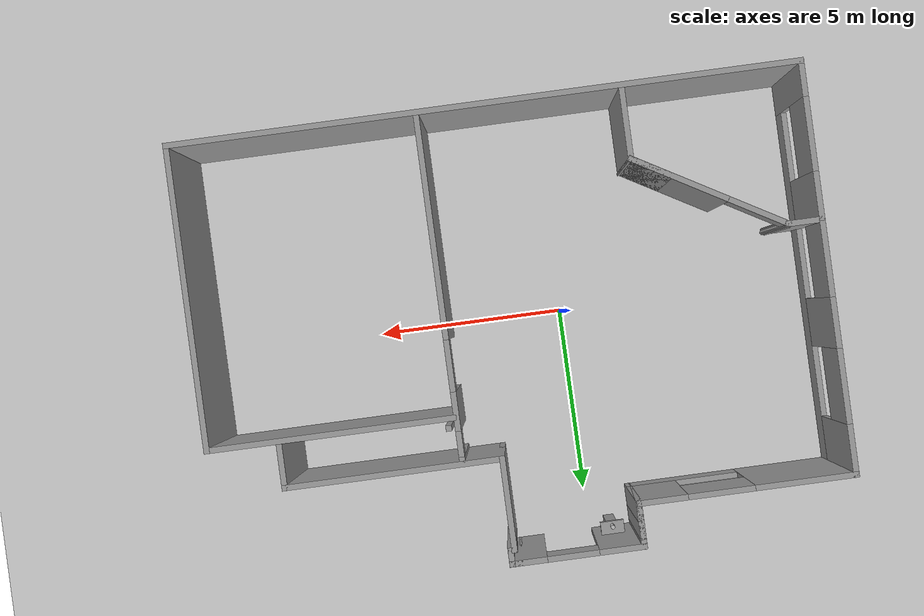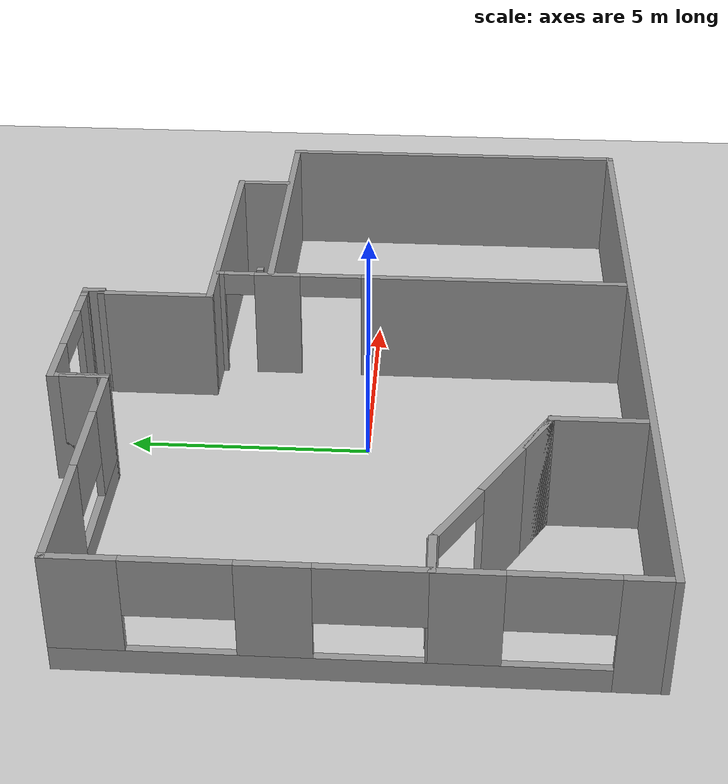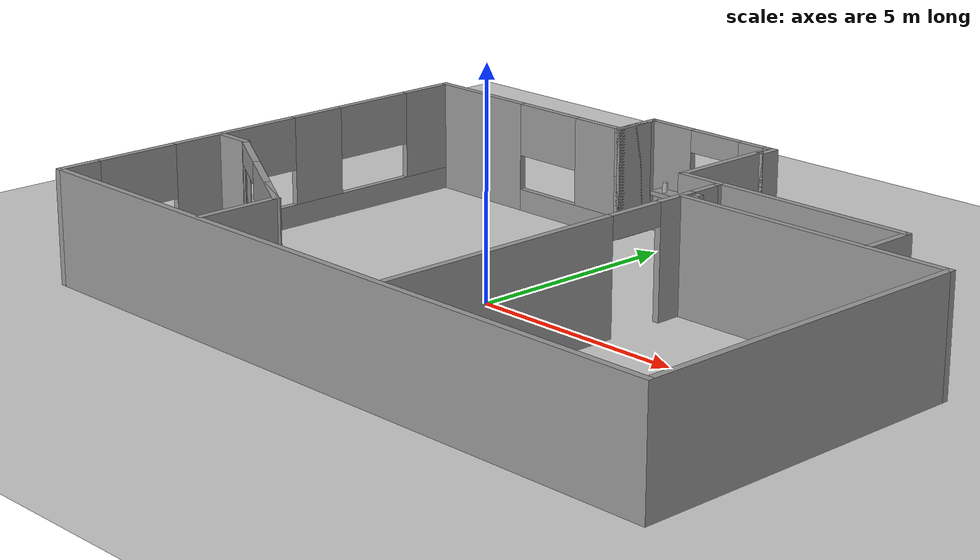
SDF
<sdf version="1.6">
 <world name="default">
  <light name="sun" type="directional">
   <pose>0 0 10 0 -0 0</pose>
   <diffuse>0.8 0.8 0.8 1</diffuse>
   <specular>0.1 0.1 0.1 1</specular>
   <attenuation>
    <range>1000</range>
    <constant>0.9</constant>
    <linear>0.01</linear>
    <quadratic>0.001</quadratic>
   </attenuation>
   <direction>-0.5 0.5 -1</direction>
  </light>
  <model name="ground_plane">
   <static>1</static>
   <link name="link">
    <collision name="collision">
     <geometry><plane><normal>0 0 1</normal><size>100 100</size></plane></geometry>
     <surface><friction><ode><mu>100</mu><mu2>50</mu2></ode></friction></surface>
    </collision>
    <visual name="visual">
     <cast_shadows>0</cast_shadows>
     <geometry><plane><normal>0 0 1</normal><size>100 100</size></plane></geometry>
     <material>
      <script><uri>file://media/materials/scripts/gazebo.material</uri><name>Gazebo/Grey</name></script>
     </material>
    </visual>
   </link>
  </model>
  <gravity>0 0 -9.8</gravity>
  <magnetic_field>6e-06 2.3e-05 -4.2e-05</magnetic_field>
  <atmosphere type="adiabatic"/>
  <physics name="default_physics" default="0" type="ode">
   <max_step_size>0.001</max_step_size>
   <real_time_factor>1</real_time_factor>
   <real_time_update_rate>1000</real_time_update_rate>
  </physics>
  <scene><ambient>0.4 0.4 0.4 1</ambient><background>0.7 0.7 0.7 1</background><shadows>1</shadows></scene>
  <spherical_coordinates>
   <surface_model>EARTH_WGS84</surface_model>
   <latitude_deg>0</latitude_deg>
   <longitude_deg>0</longitude_deg>
   <elevation>0</elevation>
   <heading_deg>0</heading_deg>
  </spherical_coordinates>
  <model name="vxlab">
   <pose>1.3462 0.357612 0 0 -0 0</pose>
   <link name="Wall_0">
    <pose>-5.375 4.775 0 0 -0 0</pose>
    <visual name="Wall_0_Visual_0">
     <pose>-1.54131 0 1.25 0 -0 0</pose>
     <geometry><box><size>2.66739 0.15 2.5</size></box></geometry>
     <material>
      <script><uri>file://media/materials/scripts/gazebo.material</uri><name>Gazebo/Grey</name></script>
      <ambient>1 1 1 1</ambient>
     </material>
    </visual>
    <collision name="Wall_0_Collision_0">
     <geometry><box><size>2.66739 0.15 2.5</size></box></geometry>
     <pose>-1.54131 0 1.25 0 -0 0</pose>
    </collision>
    <visual name="Wall_0_Visual_1">
     <pose>1.33369 0 0.25 0 -0 0</pose>
     <geometry><box><size>3.08261 0.15 0.5</size></box></geometry>
     <material>
      <script><uri>file://media/materials/scripts/gazebo.material</uri><name>Gazebo/Grey</name></script>
      <ambient>1 1 1 1</ambient>
     </material>
    </visual>
    <collision name="Wall_0_Collision_1">
     <geometry><box><size>3.08261 0.15 0.5</size></box></geometry>
     <pose>1.33369 0 0.25 0 -0 0</pose>
    </collision>
    <visual name="Wall_0_Visual_2">
     <pose>2.19944 0 1.5 0 -0 0</pose>
     <geometry><box><size>1.35111 0.15 2</size></box></geometry>
     <material>
      <script><uri>file://media/materials/scripts/gazebo.material</uri><name>Gazebo/Grey</name></script>
      <ambient>1 1 1 1</ambient>
     </material>
    </visual>
    <collision name="Wall_0_Collision_2">
     <geometry><box><size>1.35111 0.15 2</size></box></geometry>
     <pose>2.19944 0 1.5 0 -0 0</pose>
    </collision>
    <visual name="Wall_0_Visual_3">
     <pose>0.658136 0 1.9 0 -0 0</pose>
     <geometry><box><size>1.7315 0.15 1.2</size></box></geometry>
     <material>
      <script><uri>file://media/materials/scripts/gazebo.material</uri><name>Gazebo/Grey</name></script>
      <ambient>1 1 1 1</ambient>
     </material>
    </visual>
    <collision name="Wall_0_Collision_3">
     <geometry><box><size>1.7315 0.15 1.2</size></box></geometry>
     <pose>0.658136 0 1.9 0 -0 0</pose>
    </collision>
   </link>
   <link name="Wall_1">
    <collision name="Wall_1_Collision">
     <geometry><box><size>1 0.15 2.5</size></box></geometry>
     <pose>0 0 1.25 0 -0 0</pose>
    </collision>
    <visual name="Wall_1_Visual">
     <pose>0 0 1.25 0 -0 0</pose>
     <geometry><box><size>1 0.15 2.5</size></box></geometry>
     <material>
      <script><uri>file://media/materials/scripts/gazebo.material</uri><name>Gazebo/Grey</name></script>
      <ambient>1 1 1 1</ambient>
     </material>
    </visual>
    <pose>-2.575 5.2 0 0 -0 1.5708</pose>
   </link>
   <link name="Wall_2">
    <collision name="Wall_2_Collision">
     <geometry><box><size>1 0.15 2.5</size></box></geometry>
     <pose>0 0 1.25 0 -0 0</pose>
    </collision>
    <visual name="Wall_2_Visual">
     <pose>0 0 1.25 0 -0 0</pose>
     <geometry><box><size>1 0.15 2.5</size></box></geometry>
     <material>
      <script><uri>file://media/materials/scripts/gazebo.material</uri><name>Gazebo/Grey</name></script>
      <ambient>1 1 1 1</ambient>
     </material>
    </visual>
    <pose>-2.575 5.2 0 0 0 -1.5708</pose>
   </link>
   <link name="Wall_24">
    <collision name="Wall_24_Collision">
     <geometry><box><size>0.15 0.15 2.5</size></box></geometry>
     <pose>0 0 1.25 0 -0 0</pose>
    </collision>
    <visual name="Wall_24_Visual">
     <pose>0 0 1.25 0 -0 0</pose>
     <geometry><box><size>0.15 0.15 2.5</size></box></geometry>
     <material>
      <script><uri>file://media/materials/scripts/gazebo.material</uri><name>Gazebo/Grey</name></script>
      <ambient>1 1 1 1</ambient>
     </material>
    </visual>
    <pose>0.825 5.875 0 0 -0 0</pose>
   </link>
   <link name="Wall_29">
    <pose>-0.875 5.875 0 0 -0 0</pose>
    <visual name="Wall_29_Visual_0">
     <pose>-1.16054 0 1.25 0 -0 0</pose>
     <geometry><box><size>1.22892 0.15 2.5</size></box></geometry>
     <material>
      <script><uri>file://media/materials/scripts/gazebo.material</uri><name>Gazebo/Grey</name></script>
      <ambient>1 1 1 1</ambient>
     </material>
    </visual>
    <collision name="Wall_29_Collision_0">
     <geometry><box><size>1.22892 0.15 2.5</size></box></geometry>
     <pose>-1.16054 0 1.25 0 -0 0</pose>
    </collision>
    <visual name="Wall_29_Visual_1">
     <pose>1.28446 0 1.25 0 -0 0</pose>
     <geometry><box><size>0.98108 0.15 2.5</size></box></geometry>
     <material>
      <script><uri>file://media/materials/scripts/gazebo.material</uri><name>Gazebo/Grey</name></script>
      <ambient>1 1 1 1</ambient>
     </material>
    </visual>
    <collision name="Wall_29_Collision_1">
     <geometry><box><size>0.98108 0.15 2.5</size></box></geometry>
     <pose>1.28446 0 1.25 0 -0 0</pose>
    </collision>
    <visual name="Wall_29_Visual_2">
     <pose>0.12392 0 2.25 0 -0 0</pose>
     <geometry><box><size>1.34 0.15 0.5</size></box></geometry>
     <material>
      <script><uri>file://media/materials/scripts/gazebo.material</uri><name>Gazebo/Grey</name></script>
      <ambient>1 1 1 1</ambient>
     </material>
    </visual>
    <collision name="Wall_29_Collision_2">
     <geometry><box><size>1.34 0.15 0.5</size></box></geometry>
     <pose>0.12392 0 2.25 0 -0 0</pose>
    </collision>
   </link>
   <link name="Wall_3">
    <collision name="Wall_3_Collision">
     <geometry><box><size>1 0.15 2.5</size></box></geometry>
     <pose>0 0 1.25 0 -0 0</pose>
    </collision>
    <visual name="Wall_3_Visual">
     <pose>0 0 1.25 0 -0 0</pose>
     <geometry><box><size>1 0.15 2.5</size></box></geometry>
     <material>
      <script><uri>file://media/materials/scripts/gazebo.material</uri><name>Gazebo/Grey</name></script>
      <ambient>1 1 1 1</ambient>
     </material>
    </visual>
    <pose>-2.575 5.2 0 0 -0 1.5708</pose>
   </link>
   <link name="Wall_30">
    <collision name="Wall_30_Collision">
     <geometry><box><size>0.5 0.15 2.5</size></box></geometry>
     <pose>0 0 1.25 0 -0 0</pose>
    </collision>
    <visual name="Wall_30_Visual">
     <pose>0 0 1.25 0 -0 0</pose>
     <geometry><box><size>0.5 0.15 2.5</size></box></geometry>
     <material>
      <script><uri>file://media/materials/scripts/gazebo.material</uri><name>Gazebo/Grey</name></script>
      <ambient>1 1 1 1</ambient>
     </material>
    </visual>
    <pose>0.825 5.7 0 0 0 -1.5708</pose>
   </link>
   <link name="Wall_31">
    <collision name="Wall_31_Collision">
     <geometry><box><size>0.25 0.15 2.5</size></box></geometry>
     <pose>0 0 1.25 0 -0 0</pose>
    </collision>
    <visual name="Wall_31_Visual">
     <pose>0 0 1.25 0 -0 0</pose>
     <geometry><box><size>0.25 0.15 2.5</size></box></geometry>
     <material>
      <script><uri>file://media/materials/scripts/gazebo.material</uri><name>Gazebo/Grey</name></script>
      <ambient>1 1 1 1</ambient>
     </material>
    </visual>
    <pose>0.775 5.525 0 0 -0 3.14159</pose>
   </link>
   <link name="Wall_32">
    <collision name="Wall_32_Collision">
     <geometry><box><size>2.5 0.15 2.5</size></box></geometry>
     <pose>0 0 1.25 0 -0 0</pose>
    </collision>
    <visual name="Wall_32_Visual">
     <pose>0 0 1.25 0 -0 0</pose>
     <geometry><box><size>2.5 0.15 2.5</size></box></geometry>
     <material>
      <script><uri>file://media/materials/scripts/gazebo.material</uri><name>Gazebo/Grey</name></script>
      <ambient>1 1 1 1</ambient>
     </material>
    </visual>
    <pose>0.725 4.35 0 0 0 -1.5708</pose>
   </link>
   <link name="Wall_4">
    <collision name="Wall_4_Collision">
     <geometry><box><size>1 0.15 2.5</size></box></geometry>
     <pose>0 0 1.25 0 -0 0</pose>
    </collision>
    <visual name="Wall_4_Visual">
     <pose>0 0 1.25 0 -0 0</pose>
     <geometry><box><size>1 0.15 2.5</size></box></geometry>
     <material>
      <script><uri>file://media/materials/scripts/gazebo.material</uri><name>Gazebo/Grey</name></script>
      <ambient>1 1 1 1</ambient>
     </material>
    </visual>
    <pose>-2.575 5.2 0 0 0 -1.5708</pose>
   </link>
   <link name="Wall_41">
    <collision name="Wall_41_Collision">
     <geometry><box><size>16.5 0.15 2.5</size></box></geometry>
     <pose>0 0 1.25 0 -0 0</pose>
    </collision>
    <visual name="Wall_41_Visual">
     <pose>0 0 1.25 0 -0 0</pose>
     <geometry><box><size>16.5 0.15 2.5</size></box></geometry>
     <material>
      <script><uri>file://media/materials/scripts/gazebo.material</uri><name>Gazebo/Grey</name></script>
      <ambient>1 1 1 1</ambient>
     </material>
    </visual>
    <pose>0 -5.875 0 0 -0 3.14159</pose>
   </link>
   <link name="Wall_42">
    <pose>-8.175 -0.55 0 0 -0 1.5708</pose>
    <visual name="Wall_42_Visual_0">
     <pose>-4.9002 0 1.25 0 -0 0</pose>
     <geometry><box><size>0.999602 0.15 2.5</size></box></geometry>
     <material>
      <script><uri>file://media/materials/scripts/gazebo.material</uri><name>Gazebo/Grey</name></script>
      <ambient>1 1 1 1</ambient>
     </material>
    </visual>
    <collision name="Wall_42_Collision_0">
     <geometry><box><size>0.999602 0.15 2.5</size></box></geometry>
     <pose>-4.9002 0 1.25 0 -0 0</pose>
    </collision>
    <visual name="Wall_42_Visual_1">
     <pose>0.499801 0 0.25 0 -0 0</pose>
     <geometry><box><size>9.8004 0.15 0.5</size></box></geometry>
     <material>
      <script><uri>file://media/materials/scripts/gazebo.material</uri><name>Gazebo/Grey</name></script>
      <ambient>1 1 1 1</ambient>
     </material>
    </visual>
    <collision name="Wall_42_Collision_1">
     <geometry><box><size>9.8004 0.15 0.5</size></box></geometry>
     <pose>0.499801 0 0.25 0 -0 0</pose>
    </collision>
    <visual name="Wall_42_Visual_2">
     <pose>-1.84379 0 1.5 0 -0 0</pose>
     <geometry><box><size>1.27322 0.15 2</size></box></geometry>
     <material>
      <script><uri>file://media/materials/scripts/gazebo.material</uri><name>Gazebo/Grey</name></script>
      <ambient>1 1 1 1</ambient>
     </material>
    </visual>
    <collision name="Wall_42_Collision_2">
     <geometry><box><size>1.27322 0.15 2</size></box></geometry>
     <pose>-1.84379 0 1.5 0 -0 0</pose>
    </collision>
    <visual name="Wall_42_Visual_3">
     <pose>1.41797 0 1.5 0 -0 0</pose>
     <geometry><box><size>1.32137 0.15 2</size></box></geometry>
     <material>
      <script><uri>file://media/materials/scripts/gazebo.material</uri><name>Gazebo/Grey</name></script>
      <ambient>1 1 1 1</ambient>
     </material>
    </visual>
    <collision name="Wall_42_Collision_3">
     <geometry><box><size>1.32137 0.15 2</size></box></geometry>
     <pose>1.41797 0 1.5 0 -0 0</pose>
    </collision>
    <visual name="Wall_42_Visual_4">
     <pose>4.71465 0 1.5 0 -0 0</pose>
     <geometry><box><size>1.37069 0.15 2</size></box></geometry>
     <material>
      <script><uri>file://media/materials/scripts/gazebo.material</uri><name>Gazebo/Grey</name></script>
      <ambient>1 1 1 1</ambient>
     </material>
    </visual>
    <collision name="Wall_42_Collision_4">
     <geometry><box><size>1.37069 0.15 2</size></box></geometry>
     <pose>4.71465 0 1.5 0 -0 0</pose>
    </collision>
    <visual name="Wall_42_Visual_5">
     <pose>-3.4404 0 1.9 0 -0 0</pose>
     <geometry><box><size>1.92 0.15 1.2</size></box></geometry>
     <material>
      <script><uri>file://media/materials/scripts/gazebo.material</uri><name>Gazebo/Grey</name></script>
      <ambient>1 1 1 1</ambient>
     </material>
    </visual>
    <collision name="Wall_42_Collision_5">
     <geometry><box><size>1.92 0.15 1.2</size></box></geometry>
     <pose>-3.4404 0 1.9 0 -0 0</pose>
    </collision>
    <visual name="Wall_42_Visual_6">
     <pose>-0.224946 0 1.9 0 -0 0</pose>
     <geometry><box><size>1.96446 0.15 1.2</size></box></geometry>
     <material>
      <script><uri>file://media/materials/scripts/gazebo.material</uri><name>Gazebo/Grey</name></script>
      <ambient>1 1 1 1</ambient>
     </material>
    </visual>
    <collision name="Wall_42_Collision_6">
     <geometry><box><size>1.96446 0.15 1.2</size></box></geometry>
     <pose>-0.224946 0 1.9 0 -0 0</pose>
    </collision>
    <visual name="Wall_42_Visual_7">
     <pose>3.05398 0 1.9 0 -0 0</pose>
     <geometry><box><size>1.95065 0.15 1.2</size></box></geometry>
     <material>
      <script><uri>file://media/materials/scripts/gazebo.material</uri><name>Gazebo/Grey</name></script>
      <ambient>1 1 1 1</ambient>
     </material>
    </visual>
    <collision name="Wall_42_Collision_7">
     <geometry><box><size>1.95065 0.15 1.2</size></box></geometry>
     <pose>3.05398 0 1.9 0 -0 0</pose>
    </collision>
   </link>
   <link name="Wall_5">
    <collision name="Wall_5_Collision">
     <geometry><box><size>1.25 0.15 2.5</size></box></geometry>
     <pose>0 0 1.25 0 -0 0</pose>
    </collision>
    <visual name="Wall_5_Visual">
     <pose>0 0 1.25 0 -0 0</pose>
     <geometry><box><size>1.25 0.15 2.5</size></box></geometry>
     <material>
      <script><uri>file://media/materials/scripts/gazebo.material</uri><name>Gazebo/Grey</name></script>
      <ambient>1 1 1 1</ambient>
     </material>
    </visual>
    <pose>-2.575 5.325 0 0 -0 1.5708</pose>
   </link>
   <link name="Wall_58">
    <collision name="Wall_58_Collision">
     <geometry><box><size>0.15 0.15 2.5</size></box></geometry>
     <pose>0 0 1.25 0 -0 0</pose>
    </collision>
    <visual name="Wall_58_Visual">
     <pose>0 0 1.25 0 -0 0</pose>
     <geometry><box><size>0.15 0.15 2.5</size></box></geometry>
     <material>
      <script><uri>file://media/materials/scripts/gazebo.material</uri><name>Gazebo/Grey</name></script>
      <ambient>1 1 1 1</ambient>
     </material>
    </visual>
    <pose>1.975 2.225 0 0 -0 0</pose>
   </link>
   <link name="Wall_59">
    <collision name="Wall_59_Collision">
     <geometry><box><size>0.15 0.15 2.5</size></box></geometry>
     <pose>0 0 1.25 0 -0 0</pose>
    </collision>
    <visual name="Wall_59_Visual">
     <pose>0 0 1.25 0 -0 0</pose>
     <geometry><box><size>0.15 0.15 2.5</size></box></geometry>
     <material>
      <script><uri>file://media/materials/scripts/gazebo.material</uri><name>Gazebo/Grey</name></script>
      <ambient>1 1 1 1</ambient>
     </material>
    </visual>
    <pose>1.975 2.225 0 0 -0 0</pose>
   </link>
   <link name="Wall_60">
    <collision name="Wall_60_Collision">
     <geometry><box><size>0.15 0.15 2.5</size></box></geometry>
     <pose>0 0 1.25 0 -0 0</pose>
    </collision>
    <visual name="Wall_60_Visual">
     <pose>0 0 1.25 0 -0 0</pose>
     <geometry><box><size>0.15 0.15 2.5</size></box></geometry>
     <material>
      <script><uri>file://media/materials/scripts/gazebo.material</uri><name>Gazebo/Grey</name></script>
      <ambient>1 1 1 1</ambient>
     </material>
    </visual>
    <pose>1.975 2.225 0 0 -0 0</pose>
   </link>
   <link name="Wall_68">
    <collision name="Wall_68_Collision">
     <geometry><box><size>5.75 0.15 2.5</size></box></geometry>
     <pose>0 0 1.25 0 -0 0</pose>
    </collision>
    <visual name="Wall_68_Visual">
     <pose>0 0 1.25 0 -0 0</pose>
     <geometry><box><size>5.75 0.15 2.5</size></box></geometry>
     <material>
      <script><uri>file://media/materials/scripts/gazebo.material</uri><name>Gazebo/Grey</name></script>
      <ambient>1 1 1 1</ambient>
     </material>
    </visual>
    <pose>3.525 3.175 0 0 -0 0</pose>
   </link>
   <link name="Wall_69">
    <collision name="Wall_69_Collision">
     <geometry><box><size>1.25 0.15 2.5</size></box></geometry>
     <pose>0 0 1.25 0 -0 0</pose>
    </collision>
    <visual name="Wall_69_Visual">
     <pose>0 0 1.25 0 -0 0</pose>
     <geometry><box><size>1.25 0.15 2.5</size></box></geometry>
     <material>
      <script><uri>file://media/materials/scripts/gazebo.material</uri><name>Gazebo/Grey</name></script>
      <ambient>1 1 1 1</ambient>
     </material>
    </visual>
    <pose>6.325 2.625 0 0 0 -1.5708</pose>
   </link>
   <link name="Wall_71">
    <pose>1.74392 -1.33065 0 0 0 -1.5708</pose>
    <visual name="Wall_71_Visual_0">
     <pose>-4.41156 0 1.25 0 -0 0</pose>
     <geometry><box><size>0.176877 0.15 2.5</size></box></geometry>
     <material>
      <script><uri>file://media/materials/scripts/gazebo.material</uri><name>Gazebo/Grey</name></script>
      <ambient>1 1 1 1</ambient>
     </material>
    </visual>
    <collision name="Wall_71_Collision_0">
     <geometry><box><size>0.176877 0.15 2.5</size></box></geometry>
     <pose>-4.41156 0 1.25 0 -0 0</pose>
    </collision>
    <visual name="Wall_71_Visual_1">
     <pose>-3.15658 0 1.25 0 -0 0</pose>
     <geometry><box><size>1.00919 0.15 2.5</size></box></geometry>
     <material>
      <script><uri>file://media/materials/scripts/gazebo.material</uri><name>Gazebo/Grey</name></script>
      <ambient>1 1 1 1</ambient>
     </material>
    </visual>
    <collision name="Wall_71_Collision_1">
     <geometry><box><size>1.00919 0.15 2.5</size></box></geometry>
     <pose>-3.15658 0 1.25 0 -0 0</pose>
    </collision>
    <visual name="Wall_71_Visual_2">
     <pose>1.59575 0 1.25 0 -0 0</pose>
     <geometry><box><size>5.8085 0.15 2.5</size></box></geometry>
     <material>
      <script><uri>file://media/materials/scripts/gazebo.material</uri><name>Gazebo/Grey</name></script>
      <ambient>1 1 1 1</ambient>
     </material>
    </visual>
    <collision name="Wall_71_Collision_2">
     <geometry><box><size>5.8085 0.15 2.5</size></box></geometry>
     <pose>1.59575 0 1.25 0 -0 0</pose>
    </collision>
    <visual name="Wall_71_Visual_3">
     <pose>-3.99215 0 2.25 0 -0 0</pose>
     <geometry><box><size>0.66195 0.15 0.5</size></box></geometry>
     <material>
      <script><uri>file://media/materials/scripts/gazebo.material</uri><name>Gazebo/Grey</name></script>
      <ambient>1 1 1 1</ambient>
     </material>
    </visual>
    <collision name="Wall_71_Collision_3">
     <geometry><box><size>0.66195 0.15 0.5</size></box></geometry>
     <pose>-3.99215 0 2.25 0 -0 0</pose>
    </collision>
    <visual name="Wall_71_Visual_4">
     <pose>-1.98024 0 2.25 0 -0 0</pose>
     <geometry><box><size>1.34348 0.15 0.5</size></box></geometry>
     <material>
      <script><uri>file://media/materials/scripts/gazebo.material</uri><name>Gazebo/Grey</name></script>
      <ambient>1 1 1 1</ambient>
     </material>
    </visual>
    <collision name="Wall_71_Collision_4">
     <geometry><box><size>1.34348 0.15 0.5</size></box></geometry>
     <pose>-1.98024 0 2.25 0 -0 0</pose>
    </collision>
   </link>
   <link name="Wall_77">
    <collision name="Wall_77_Collision">
     <geometry><box><size>8 0.15 2.5</size></box></geometry>
     <pose>0 0 1.25 0 -0 0</pose>
    </collision>
    <visual name="Wall_77_Visual">
     <pose>0 0 1.25 0 -0 0</pose>
     <geometry><box><size>8 0.15 2.5</size></box></geometry>
     <material>
      <script><uri>file://media/materials/scripts/gazebo.material</uri><name>Gazebo/Grey</name></script>
      <ambient>1 1 1 1</ambient>
     </material>
    </visual>
    <pose>8.175 -1.95 0 0 -0 1.5708</pose>
   </link>
   <link name="Wall_78">
    <collision name="Wall_78_Collision">
     <geometry><box><size>6.5 0.15 2.5</size></box></geometry>
     <pose>0 0 1.25 0 -0 0</pose>
    </collision>
    <visual name="Wall_78_Visual">
     <pose>0 0 1.25 0 -0 0</pose>
     <geometry><box><size>6.5 0.15 2.5</size></box></geometry>
     <material>
      <script><uri>file://media/materials/scripts/gazebo.material</uri><name>Gazebo/Grey</name></script>
      <ambient>1 1 1 1</ambient>
     </material>
    </visual>
    <pose>5 1.975 0 0 -0 3.14159</pose>
   </link>
   <link name="Wall_8">
    <collision name="Wall_8_Collision">
     <geometry><box><size>0.15 0.15 2.5</size></box></geometry>
     <pose>0 0 1.25 0 -0 0</pose>
    </collision>
    <visual name="Wall_8_Visual">
     <pose>0 0 1.25 0 -0 0</pose>
     <geometry><box><size>0.15 0.15 2.5</size></box></geometry>
     <material>
      <script><uri>file://media/materials/scripts/gazebo.material</uri><name>Gazebo/Grey</name></script>
      <ambient>1 1 1 1</ambient>
     </material>
    </visual>
    <pose>0.625 5.875 0 0 -0 0</pose>
   </link>
   <link name="Wall_80">
    <collision name="Wall_80_Collision">
     <geometry><box><size>1 0.15 2.5</size></box></geometry>
     <pose>0 0 1.25 0 -0 0</pose>
    </collision>
    <visual name="Wall_80_Visual">
     <pose>0 0 1.25 0 -0 0</pose>
     <geometry><box><size>1 0.15 2.5</size></box></geometry>
     <material>
      <script><uri>file://media/materials/scripts/gazebo.material</uri><name>Gazebo/Grey</name></script>
      <ambient>1 1 1 1</ambient>
     </material>
    </visual>
    <pose>-7.73999 -1.7904 0 0 -0 0</pose>
   </link>
   <link name="Wall_81">
    <pose>-5.43139 -2.8779 0 0 0 -0.523599</pose>
    <visual name="Wall_81_Visual_0">
     <pose>-2.16871 0 1.25 0 -0 0</pose>
     <geometry><box><size>0.162576 0.15 2.5</size></box></geometry>
     <material>
      <script><uri>file://media/materials/scripts/gazebo.material</uri><name>Gazebo/Grey</name></script>
      <ambient>1 1 1 1</ambient>
     </material>
    </visual>
    <collision name="Wall_81_Collision_0">
     <geometry><box><size>0.162576 0.15 2.5</size></box></geometry>
     <pose>-2.16871 0 1.25 0 -0 0</pose>
    </collision>
    <visual name="Wall_81_Visual_1">
     <pose>0.863435 0 1.25 0 -0 0</pose>
     <geometry><box><size>2.77313 0.15 2.5</size></box></geometry>
     <material>
      <script><uri>file://media/materials/scripts/gazebo.material</uri><name>Gazebo/Grey</name></script>
      <ambient>1 1 1 1</ambient>
     </material>
    </visual>
    <collision name="Wall_81_Collision_1">
     <geometry><box><size>2.77313 0.15 2.5</size></box></geometry>
     <pose>0.863435 0 1.25 0 -0 0</pose>
    </collision>
    <visual name="Wall_81_Visual_2">
     <pose>1.63289 0 1.25 0 -0 0</pose>
     <geometry><box><size>1.23422 0.15 2.5</size></box></geometry>
     <material>
      <script><uri>file://media/materials/scripts/gazebo.material</uri><name>Gazebo/Grey</name></script>
      <ambient>1 1 1 1</ambient>
     </material>
    </visual>
    <collision name="Wall_81_Collision_2">
     <geometry><box><size>1.23422 0.15 2.5</size></box></geometry>
     <pose>1.63289 0 1.25 0 -0 0</pose>
    </collision>
    <visual name="Wall_81_Visual_3">
     <pose>-1.30661 0 2.25 0 -0 0</pose>
     <geometry><box><size>1.56163 0.15 0.5</size></box></geometry>
     <material>
      <script><uri>file://media/materials/scripts/gazebo.material</uri><name>Gazebo/Grey</name></script>
      <ambient>1 1 1 1</ambient>
     </material>
    </visual>
    <collision name="Wall_81_Collision_3">
     <geometry><box><size>1.56163 0.15 0.5</size></box></geometry>
     <pose>-1.30661 0 2.25 0 -0 0</pose>
    </collision>
   </link>
   <link name="Wall_82">
    <collision name="Wall_82_Collision">
     <geometry><box><size>2 0.15 2.5</size></box></geometry>
     <pose>0 0 1.25 0 -0 0</pose>
    </collision>
    <visual name="Wall_82_Visual">
     <pose>0 0 1.25 0 -0 0</pose>
     <geometry><box><size>2 0.15 2.5</size></box></geometry>
     <material>
      <script><uri>file://media/materials/scripts/gazebo.material</uri><name>Gazebo/Grey</name></script>
      <ambient>1 1 1 1</ambient>
     </material>
    </visual>
    <pose>-3.54778 -4.8904 0 0 0 -1.5708</pose>
   </link>
   <static>1</static>
  </model>
  <model name="beerPedestal">
   <include>
    <static>true</static>
    <uri>model://beerPedestal</uri>
    <pose>-0.590677 6.026460 0.739853 0 0 0</pose>
   </include>
  </model>
  <model name="beer">
   <include><static>true</static><uri>model://beer</uri><pose>-0.591135 5.932420 1.030944 0 0 0</pose></include>
  </model>
 </world>
</sdf>

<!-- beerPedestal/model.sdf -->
<sdf version='1.6'>
  <model name='beerPedestal'>
    <link name='link_0'>
      <pose frame=''>-0.003228 0.024851 0.239853 0 -0 0</pose>
      <inertial>
        <mass>0.0294019</mass>
        <inertia>
          <ixx>0.000562586</ixx>
          <ixy>0</ixy>
          <ixz>0</ixz>
          <iyy>0.000997132</iyy>
          <iyz>0</iyz>
          <izz>0.00151116</izz>
        </inertia>
        <pose frame=''>0 0 0 0 -0 0</pose>
      </inertial>
      <visual name='visual'>
        <pose frame=''>0 0 0 0 -0 0</pose>
        <geometry>
          <box>
            <size>0.630125 0.46873 0.099543</size>
          </box>
        </geometry>
        <material>
          <lighting>1</lighting>
          <script>
            <uri>file://media/materials/scripts/gazebo.material</uri>
            <name>Gazebo/Grey</name>
          </script>
          <ambient>0.3 0.3 0.3 1</ambient>
          <diffuse>0.7 0.7 0.7 1</diffuse>
          <specular>0.01 0.01 0.01 1</specular>
          <emissive>0 0 0 1</emissive>
        </material>
        <cast_shadows>1</cast_shadows>
        <transparency>0</transparency>
      </visual>
      <collision name='collision'>
        <laser_retro>0</laser_retro>
        <max_contacts>10</max_contacts>
        <pose frame=''>0 0 0 0 -0 0</pose>
        <geometry>
          <box>
            <size>0.630125 0.46873 0.099543</size>
          </box>
        </geometry>
        <surface>
          <friction>
            <ode>
              <mu>1</mu>
              <mu2>1</mu2>
              <fdir1>0 0 0</fdir1>
              <slip1>0</slip1>
              <slip2>0</slip2>
            </ode>
            <torsional>
              <coefficient>1</coefficient>
              <patch_radius>0</patch_radius>
              <surface_radius>0</surface_radius>
              <use_patch_radius>1</use_patch_radius>
              <ode>
                <slip>0</slip>
              </ode>
            </torsional>
          </friction>
          <bounce>
            <restitution_coefficient>0</restitution_coefficient>
            <threshold>1e+06</threshold>
          </bounce>
          <contact>
            <collide_without_contact>0</collide_without_contact>
            <collide_without_contact_bitmask>1</collide_without_contact_bitmask>
            <collide_bitmask>1</collide_bitmask>
            <ode>
              <soft_cfm>0</soft_cfm>
              <soft_erp>0.2</soft_erp>
              <kp>1e+13</kp>
              <kd>1</kd>
              <max_vel>0.01</max_vel>
              <min_depth>0</min_depth>
            </ode>
            <bullet>
              <split_impulse>1</split_impulse>
              <split_impulse_penetration_threshold>-0.01</split_impulse_penetration_threshold>
              <soft_cfm>0</soft_cfm>
              <soft_erp>0.2</soft_erp>
              <kp>1e+13</kp>
              <kd>1</kd>
            </bullet>
          </contact>
        </surface>
      </collision>
    </link>
    <link name='link_2'>
      <pose frame=''>0.003228 -0.024855 -0.239853 0 -0 0</pose>
      <inertial>
        <mass>0.0847533</mass>
        <inertia>
          <ixx>0.0076844</ixx>
          <ixy>0</ixy>
          <ixz>0</ixz>
          <iyy>0.00763922</iyy>
          <iyz>0</iyz>
          <izz>0.00119804</izz>
        </inertia>
        <pose frame=''>0 0 0 0 -0 0</pose>
      </inertial>
      <visual name='visual'>
        <pose frame=''>0 0 0 0 -0 0</pose>
        <geometry>
          <box>
            <size>0.285689 0.296668 1</size>
          </box>
        </geometry>
        <material>
          <lighting>1</lighting>
          <script>
            <uri>file://media/materials/scripts/gazebo.material</uri>
            <name>Gazebo/Grey</name>
          </script>
          <ambient>0.3 0.3 0.3 1</ambient>
          <diffuse>0.7 0.7 0.7 1</diffuse>
          <specular>0.01 0.01 0.01 1</specular>
          <emissive>0 0 0 1</emissive>
        </material>
        <cast_shadows>1</cast_shadows>
        <transparency>0</transparency>
      </visual>
      <collision name='collision'>
        <laser_retro>0</laser_retro>
        <max_contacts>10</max_contacts>
        <pose frame=''>0 0 0 0 -0 0</pose>
        <geometry>
          <box>
            <size>0.285689 0.296668 1</size>
          </box>
        </geometry>
        <surface>
          <friction>
            <ode>
              <mu>1</mu>
              <mu2>1</mu2>
              <fdir1>0 0 0</fdir1>
              <slip1>0</slip1>
              <slip2>0</slip2>
            </ode>
            <torsional>
              <coefficient>1</coefficient>
              <patch_radius>0</patch_radius>
              <surface_radius>0</surface_radius>
              <use_patch_radius>1</use_patch_radius>
              <ode>
                <slip>0</slip>
              </ode>
            </torsional>
          </friction>
          <bounce>
            <restitution_coefficient>0</restitution_coefficient>
            <threshold>1e+06</threshold>
          </bounce>
          <contact>
            <collide_without_contact>0</collide_without_contact>
            <collide_without_contact_bitmask>1</collide_without_contact_bitmask>
            <collide_bitmask>1</collide_bitmask>
            <ode>
              <soft_cfm>0</soft_cfm>
              <soft_erp>0.2</soft_erp>
              <kp>1e+13</kp>
              <kd>1</kd>
              <max_vel>0.01</max_vel>
              <min_depth>0</min_depth>
            </ode>
            <bullet>
              <split_impulse>1</split_impulse>
              <split_impulse_penetration_threshold>-0.01</split_impulse_penetration_threshold>
              <soft_cfm>0</soft_cfm>
              <soft_erp>0.2</soft_erp>
              <kp>1e+13</kp>
              <kd>1</kd>
            </bullet>
          </contact>
        </surface>
      </collision>
    </link>
    <static>0</static>
    <allow_auto_disable>1</allow_auto_disable>
  </model>
</sdf>

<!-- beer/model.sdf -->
<sdf version='1.6'>
  <model name='beer'>
    <model name='beer'>
      <link name='link'>
        <pose frame=''>0 0 0.115 0 -0 0</pose>
        <inertial>
          <mass>0.39</mass>
          <inertia>
            <ixx>0.00058</ixx>
            <ixy>0</ixy>
            <ixz>0</ixz>
            <iyy>0.00058</iyy>
            <iyz>0</iyz>
            <izz>0.00019</izz>
          </inertia>
        </inertial>
        <collision name='collision'>
          <geometry>
            <cylinder>
              <radius>0.055</radius>
              <length>0.23</length>
            </cylinder>
          </geometry>
        </collision>
        <visual name='visual'>
          <geometry>
            <cylinder>
              <radius>0.055</radius>
              <length>0.23</length>
            </cylinder>
          </geometry>
          <material>
            <script>
              <uri>model://beer/materials/scripts</uri>
              <uri>model://beer/materials/textures</uri>
              <name>Beer/Diffuse</name>
            </script>
          </material>
        </visual>
      </link>
      <pose frame=''>-0 -4e-06 4e-06 0 -0 0</pose>
    </model>
    <static>0</static>
    <allow_auto_disable>1</allow_auto_disable>
  </model>
</sdf>
